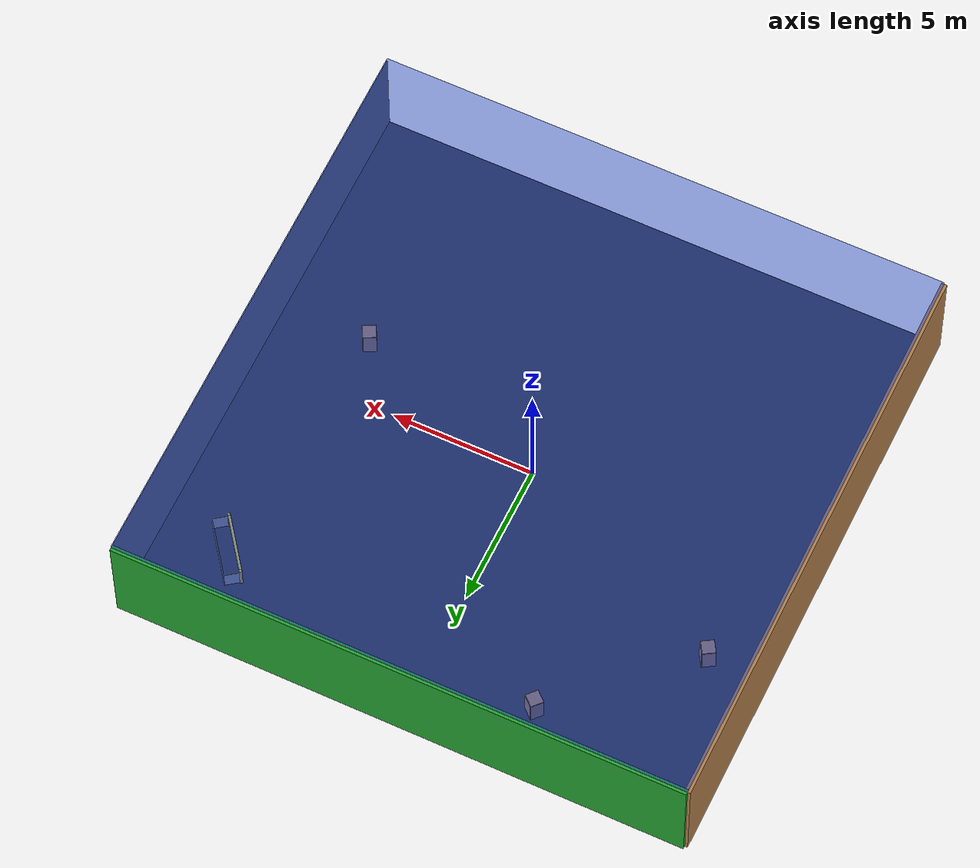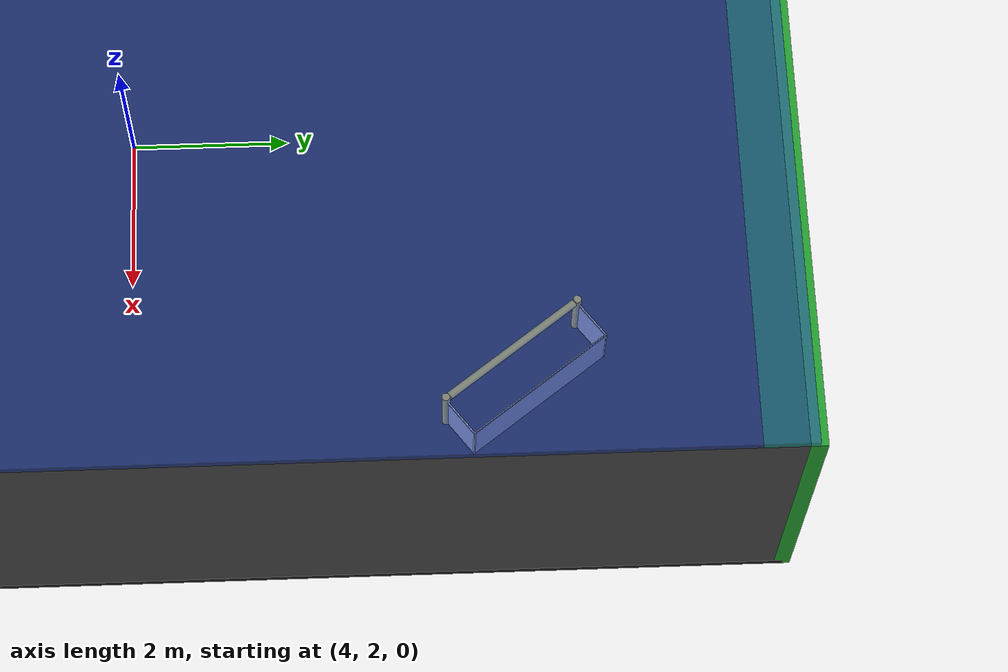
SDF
<sdf version="1.4">
 <world name="default">
  <physics type="ode">
   <max_step_size>0.001</max_step_size>
   <real_time_factor>1</real_time_factor>
   <real_time_update_rate>1000</real_time_update_rate>
   <gravity>0 0 -9.8</gravity>
  </physics>
  <scene><ambient>0.4 0.4 0.4 1</ambient><background>0.7 0.7 0.7 1</background><shadows>1</shadows></scene>
  <model name="Surrounding">
   <static>1</static>
   <link name="Ceiling">
    <collision name="Ceiling_Collision"><geometry><box><size>20 20 0.1</size></box></geometry></collision>
    <visual name="Ceiling_Visual">
     <geometry><box><size>20 20 0.1</size></box></geometry>
     <material>
      <script><uri>file://media/materials/scripts/gazebo.material</uri><name>Gazebo/BlueTransparent</name></script>
     </material>
    </visual>
    <pose>0 0 4.05 0 0 0</pose>
   </link>
   <link name="Wall_South">
    <collision name="Wall_South_Collision">
     <geometry><box><size>20 0 4</size></box></geometry>
     <pose>0 0 2 0 -0 0</pose>
    </collision>
    <visual name="Wall_South_Visual">
     <pose>0 0 2 0 -0 0</pose>
     <geometry><box><size>20 0 4</size></box></geometry>
     <material>
      <script>
       <uri>file://media/materials/scripts/gazebo.material</uri>
       <name>Gazebo/YellowTransparent</name>
      </script>
     </material>
    </visual>
    <velocity_decay><linear>0</linear><angular>0</angular></velocity_decay>
    <pose>0 -10 0 0 -0 0</pose>
   </link>
   <link name="Wall_East">
    <collision name="Wall_21_Collision">
     <geometry><box><size>20 0 4</size></box></geometry>
     <pose>0 0 2 0 -0 0</pose>
    </collision>
    <visual name="Wall_21_Visual">
     <pose>0 0 2 0 -0 0</pose>
     <geometry><box><size>20 0 4</size></box></geometry>
     <material>
      <script><uri>file://media/materials/scripts/gazebo.material</uri><name>Gazebo/Road</name></script>
     </material>
    </visual>
    <velocity_decay><linear>0</linear><angular>0</angular></velocity_decay>
    <pose>10 0 0 0 -0 1.5708</pose>
   </link>
   <link name="Wall_North">
    <collision name="Wall_22_Collision">
     <geometry><box><size>20 0.2 4</size></box></geometry>
     <pose>0 0 2 0 -0 0</pose>
    </collision>
    <visual name="Wall_22_Visual">
     <pose>0 0 2 0 -0 0</pose>
     <geometry><box><size>20 0.2 4</size></box></geometry>
     <material>
      <script><uri>file://media/materials/scripts/gazebo.material</uri><name>Gazebo/GreenGlow</name></script>
     </material>
    </visual>
    <velocity_decay><linear>0</linear><angular>0</angular></velocity_decay>
    <pose>0 10 0 0 -0 0</pose>
   </link>
   <link name="Wall_West">
    <collision name="Wall_23_Collision">
     <geometry><box><size>20 0.2 4</size></box></geometry>
     <pose>0 0 2 0 -0 0</pose>
    </collision>
    <visual name="Wall_23_Visual">
     <pose>0 0 2 0 -0 0</pose>
     <geometry><box><size>20 0.2 4</size></box></geometry>
     <material>
      <script><uri>file://media/materials/scripts/gazebo.material</uri><name>Gazebo/Wood</name></script>
     </material>
    </visual>
    <velocity_decay><linear>0</linear><angular>0</angular></velocity_decay>
    <pose>-10 0 0 0 0 -1.5708</pose>
   </link>
   <link name="Ground_link">
    <collision name="collision">
     <pose>0 0 .05 0 -0 0</pose>
     <geometry><box><size>20 20 0.1</size></box></geometry>
    </collision>
    <visual name="visual">
     <pose>0 0 .05 0 -0 0</pose>
     <geometry><box><size>20 20 0.1</size></box></geometry>
     <material>
      <script><uri>file://media/materials/scripts/gazebo.material</uri><name>Gazebo/FlatBlack</name></script>
     </material>
    </visual>
   </link>
   <static>1</static>
  </model>
  <spherical_coordinates>
   <surface_model>EARTH_WGS84</surface_model>
   <latitude_deg>0</latitude_deg>
   <longitude_deg>0</longitude_deg>
   <elevation>0</elevation>
   <heading_deg>0</heading_deg>
  </spherical_coordinates>
  <light name="lightball_0" type="diffuse">
   <diffuse>0.8 0.8 0.8 1</diffuse>
   <specular>0.2 0.2 0.2 1</specular>
   <attenuation>
    <range>100</range>
    <constant>0.7</constant>
    <linear>0.01</linear>
    <quadratic>0.001</quadratic>
   </attenuation>
   <direction>-0.5 0.1 -0.9</direction>
   <pose>4.76269465542 -0.0486921772658 2.48397542512 0 0 0</pose>
  </light>
  <light name="lightball_1" type="diffuse">
   <diffuse>0.8 0.8 0.8 1</diffuse>
   <specular>0.2 0.2 0.2 1</specular>
   <attenuation>
    <range>100</range>
    <constant>0.7</constant>
    <linear>0.01</linear>
    <quadratic>0.001</quadratic>
   </attenuation>
   <direction>-0.5 0.1 -0.9</direction>
   <pose>1.54493141286 -3.30400032156 2.76292691351 0 0 0</pose>
  </light>
  <light name="lightball_2" type="diffuse">
   <diffuse>0.8 0.8 0.8 1</diffuse>
   <specular>0.2 0.2 0.2 1</specular>
   <attenuation>
    <range>100</range>
    <constant>0.7</constant>
    <linear>0.01</linear>
    <quadratic>0.001</quadratic>
   </attenuation>
   <direction>-0.5 0.1 -0.9</direction>
   <pose>-9.0515554196 9.59332842896 3.37133575433 0 0 0</pose>
  </light>
  <light name="lightball_3" type="diffuse">
   <diffuse>0.8 0.8 0.8 1</diffuse>
   <specular>0.2 0.2 0.2 1</specular>
   <attenuation>
    <range>100</range>
    <constant>0.7</constant>
    <linear>0.01</linear>
    <quadratic>0.001</quadratic>
   </attenuation>
   <direction>-0.5 0.1 -0.9</direction>
   <pose>4.66403971579 8.48414026018 1.49905910751 0 0 0</pose>
  </light>
  <light name="lightball_4" type="diffuse">
   <diffuse>0.8 0.8 0.8 1</diffuse>
   <specular>0.2 0.2 0.2 1</specular>
   <attenuation>
    <range>100</range>
    <constant>0.7</constant>
    <linear>0.01</linear>
    <quadratic>0.001</quadratic>
   </attenuation>
   <direction>-0.5 0.1 -0.9</direction>
   <pose>-1.19103229476 3.77415165963 1.41220418156 0 0 0</pose>
  </light>
  <light name="lightball_5" type="diffuse">
   <diffuse>0.8 0.8 0.8 1</diffuse>
   <specular>0.2 0.2 0.2 1</specular>
   <attenuation>
    <range>100</range>
    <constant>0.7</constant>
    <linear>0.01</linear>
    <quadratic>0.001</quadratic>
   </attenuation>
   <direction>-0.5 0.1 -0.9</direction>
   <pose>2.47213071423 -1.69045399885 1.4323181729 0 0 0</pose>
  </light>
  <light name="lightball_6" type="diffuse">
   <diffuse>0.8 0.8 0.8 1</diffuse>
   <specular>0.2 0.2 0.2 1</specular>
   <attenuation>
    <range>100</range>
    <constant>0.7</constant>
    <linear>0.01</linear>
    <quadratic>0.001</quadratic>
   </attenuation>
   <direction>-0.5 0.1 -0.9</direction>
   <pose>-2.23619604909 -3.04078595746 3.64218408053 0 0 0</pose>
  </light>
  <light name="lightball_7" type="diffuse">
   <diffuse>0.8 0.8 0.8 1</diffuse>
   <specular>0.2 0.2 0.2 1</specular>
   <attenuation>
    <range>100</range>
    <constant>0.7</constant>
    <linear>0.01</linear>
    <quadratic>0.001</quadratic>
   </attenuation>
   <direction>-0.5 0.1 -0.9</direction>
   <pose>-2.19691167832 1.38984687723 1.31905075086 0 0 0</pose>
  </light>
  <light name="lightball_8" type="diffuse">
   <diffuse>0.8 0.8 0.8 1</diffuse>
   <specular>0.2 0.2 0.2 1</specular>
   <attenuation>
    <range>100</range>
    <constant>0.7</constant>
    <linear>0.01</linear>
    <quadratic>0.001</quadratic>
   </attenuation>
   <direction>-0.5 0.1 -0.9</direction>
   <pose>4.22839908905 -3.16383897169 3.24125496033 0 0 0</pose>
  </light>
  <include><uri>model://cabinet</uri><pose>-7.96235175991 3.77560438673 0 0 0 0.554618930847</pose></include>
  <include><uri>model://cabinet</uri><pose>-3.73046086704 7.7815776277 0 0 0 0.838546028197</pose></include>
  <include><uri>model://cabinet</uri><pose>6.83914825386 -1.99443824866 0 0 0 0.466354558682</pose></include>
  <include>
   <uri>model://robocup_3Dsim_goal</uri>
   <pose>7.3939903891 6.78573362835 0 0 0 0.640694132679</pose>
  </include>
 </world>
</sdf>

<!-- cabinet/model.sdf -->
<sdf version="1.5">
  <model name="cabinet">
    <static>true</static>
    <link name="cabinet_bottom_plate">
      <inertial>
        <pose>0 0 -1 0 0 0</pose>
        <inertia>
          <ixx>2.050000</ixx>
          <ixy>0</ixy>
          <ixz>0</ixz>
          <iyy>2.050000</iyy>
          <iyz>0</iyz>
          <izz>2.050000</izz>
        </inertia>
        <mass>25.000000</mass>
      </inertial>
      <collision name="cabinet_bottom_plate_geom">
        <pose>0 0 0.010000 0 0 0</pose>
        <geometry>
          <box>
            <size>0.450000 0.450000 0.020000</size>
          </box>
        </geometry>
      </collision>
      <visual name="cabinet_bottom_plate_geom_visual">
        <pose>0 0 0.010000 0 0 0</pose>
        <geometry>
          <box>
            <size>0.450000 0.450000 0.020000</size>
          </box>
        </geometry>
        <material>
          <script>
            <uri>model://media/materials/scripts/gazebo.material</uri>
            <name>Gazebo/Wood</name>
          </script>
        </material>
      </visual>
      <collision name="cabinet_bottom_plate_geom_cabinet_back_plate">
        <pose>0.235000 0 0.510000 0 0 0</pose>
        <geometry>
          <box>
            <size>0.020000 0.450000 1.020000</size>
          </box>
        </geometry>
      </collision>
      <visual name="cabinet_bottom_plate_geom_cabinet_back_plate_visual">
        <pose>0.235000 0 0.510000 0 0 0</pose>
        <geometry>
          <box>
            <size>0.020000 0.450000 1.020000</size>
          </box>
        </geometry>
        <material>
          <script>
            <uri>model://media/materials/scripts/gazebo.material</uri>
            <name>Gazebo/Wood</name>
          </script>
        </material>
      </visual>
      <collision name="cabinet_bottom_plate_geom_cabinet_left_plate">
        <pose>0 0.235000 0.510000 0 0 0</pose>
        <geometry>
          <box>
            <size>0.450000 0.020000 1.020000</size>
          </box>
        </geometry>
      </collision>
      <visual name="cabinet_bottom_plate_geom_cabinet_left_plate_visual">
        <pose>0 0.235000 0.510000 0 0 0</pose>
        <geometry>
          <box>
            <size>0.450000 0.020000 1.020000</size>
          </box>
        </geometry>
        <material>
          <script>
            <uri>model://media/materials/scripts/gazebo.material</uri>
            <name>Gazebo/Wood</name>
          </script>
        </material>
      </visual>
      <collision name="cabinet_bottom_plate_geom_cabinet_middle_plate">
        <pose>0 0 0.510000 0 0 0</pose>
        <geometry>
          <box>
            <size>0.450000 0.450000 0.020000</size>
          </box>
        </geometry>
      </collision>
      <visual name="cabinet_bottom_plate_geom_cabinet_middle_plate_visual">
        <pose>0 0 0.510000 0 0 0</pose>
        <geometry>
          <box>
            <size>0.450000 0.450000 0.020000</size>
          </box>
        </geometry>
        <material>
          <script>
            <uri>model://media/materials/scripts/gazebo.material</uri>
            <name>Gazebo/Wood</name>
          </script>
        </material>
      </visual>
      <collision name="cabinet_bottom_plate_geom_cabinet_right_plate">
        <pose>0 -0.235000 0.510000 0 0 0</pose>
        <geometry>
          <box>
            <size>0.450000 0.020000 1.020000</size>
          </box>
        </geometry>
      </collision>
      <visual name="cabinet_bottom_plate_geom_cabinet_right_plate_visual">
        <pose>0 -0.235000 0.510000 0 0 0</pose>
        <geometry>
          <box>
            <size>0.450000 0.020000 1.020000</size>
          </box>
        </geometry>
        <material>
          <script>
            <uri>model://media/materials/scripts/gazebo.material</uri>
            <name>Gazebo/Wood</name>
          </script>
        </material>
      </visual>
      <collision name="cabinet_bottom_plate_geom_cabinet_top_plate">
        <pose>0 0 1.010000 0 0 0</pose>
        <geometry>
          <box>
            <size>0.450000 0.450000 0.020000</size>
          </box>
        </geometry>
      </collision>
      <visual name="cabinet_bottom_plate_geom_cabinet_top_plate_visual">
        <pose>0 0 1.010000 0 0 0</pose>
        <geometry>
          <box>
            <size>0.450000 0.450000 0.020000</size>
          </box>
        </geometry>
        <material>
          <script>
            <uri>model://media/materials/scripts/gazebo.material</uri>
            <name>Gazebo/Wood</name>
          </script>
        </material>
      </visual>
    </link>
  </model>
</sdf>

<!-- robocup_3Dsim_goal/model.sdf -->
<sdf version="1.5">
  <model name="robocup_3d_goal">
    <static>true</static>
    <link name="left_post">
      <pose>0 1.05 0.45 0 0 0</pose>
      <collision name="collision">
        <geometry>
          <cylinder>
            <radius>0.05</radius>
            <length>0.9</length>
          </cylinder>
        </geometry>
      </collision>
      <visual name="visual">
        <geometry>
          <cylinder>
            <radius>0.05</radius>
            <length>0.9</length>
          </cylinder>
        </geometry>
        <material>
          <script>
            <uri>file://media/materials/scripts/gazebo.material</uri>
            <name>Gazebo/ZincYellow</name>
          </script>
        </material>
      </visual>
    </link>
    <link name="left_support_horiz_lower">
      <pose>0.30 1.05 0.01 0 0 0</pose>
      <collision name="collision">
        <geometry>
          <box>
            <size>0.50 0.02 0.02</size>
          </box>
        </geometry>
      </collision>
      <visual name="visual">
        <geometry>
          <box>
            <size>0.50 0.02 0.02</size>
          </box>
        </geometry>
        <material>
          <script>
            <uri>file://media/materials/scripts/gazebo.material</uri>
            <name>Gazebo/White</name>
          </script>
        </material>
      </visual>
    </link>
    <link name="left_support_horiz_upper">
      <pose>0.30 1.05 0.79 0 0 0</pose>
      <collision name="collision">
        <geometry>
          <box>
            <size>0.50 0.02 0.02</size>
          </box>
        </geometry>
      </collision>
      <visual name="visual">
        <geometry>
          <box>
            <size>0.50 0.02 0.02</size>
          </box>
        </geometry>
        <material>
          <script>
            <uri>file://media/materials/scripts/gazebo.material</uri>
            <name>Gazebo/White</name>
          </script>
        </material>
      </visual>
    </link>
    <link name="left_support_vertical">
      <pose>0.56 1.05 0.4 0 1.5708 0</pose>
      <collision name="collision">
        <geometry>
          <box>
            <size>0.80 0.02 0.02</size>
          </box>
        </geometry>
      </collision>
      <visual name="visual">
        <geometry>
          <box>
            <size>0.80 0.02 0.02</size>
          </box>
        </geometry>
        <material>
          <script>
            <uri>file://media/materials/scripts/gazebo.material</uri>
            <name>Gazebo/White</name>
          </script>
        </material>
      </visual>
    </link>
    <link name="right_support_horiz_lower">
      <pose>0.30 -1.05 0.01 0 0 0</pose>
      <collision name="collision">
        <geometry>
          <box>
            <size>0.50 0.02 0.02</size>
          </box>
        </geometry>
      </collision>
      <visual name="visual">
        <geometry>
          <box>
            <size>0.50 0.02 0.02</size>
          </box>
        </geometry>
        <material>
          <script>
            <uri>file://media/materials/scripts/gazebo.material</uri>
            <name>Gazebo/White</name>
          </script>
        </material>
      </visual>
    </link>
    <link name="right_support_horiz_upper">
      <pose>0.30 -1.05 0.79 0 0 0</pose>
      <collision name="collision">
        <geometry>
          <box>
            <size>0.50 0.02 0.02</size>
          </box>
        </geometry>
      </collision>
      <visual name="visual">
        <geometry>
          <box>
            <size>0.50 0.02 0.02</size>
          </box>
        </geometry>
        <material>
          <script>
            <uri>file://media/materials/scripts/gazebo.material</uri>
            <name>Gazebo/White</name>
          </script>
        </material>
      </visual>
    </link>
    <link name="right_support_vertical">
      <pose>0.56 -1.05 0.4 0 1.5708 0</pose>
      <collision name="collision">
        <geometry>
          <box>
            <size>0.80 0.02 0.02</size>
          </box>
        </geometry>
      </collision>
      <visual name="visual">
        <geometry>
          <box>
            <size>0.80 0.02 0.02</size>
          </box>
        </geometry>
        <material>
          <script>
            <uri>file://media/materials/scripts/gazebo.material</uri>
            <name>Gazebo/White</name>
          </script>
        </material>
      </visual>
    </link>
    <link name="center_support_horiz_lower">
      <pose>0.56 0 0.01 0 1.5708 0</pose>
      <collision name="collision">
        <geometry>
          <box>
            <size>0.02 2.08 0.02</size>
          </box>
        </geometry>
      </collision>
      <visual name="visual">
        <geometry>
          <box>
            <size>0.02 2.08 0.02</size>
          </box>
        </geometry>
        <material>
          <script>
            <uri>file://media/materials/scripts/gazebo.material</uri>
            <name>Gazebo/White</name>
          </script>
        </material>
      </visual>
    </link>
    <link name="center_support_horiz_upper">
      <pose>0.56 0 0.79 0 1.5708 0</pose>
      <collision name="collision">
        <geometry>
          <box>
            <size>0.02 2.08 0.02</size>
          </box>
        </geometry>
      </collision>
      <visual name="visual">
        <geometry>
          <box>
            <size>0.02 2.08 0.02</size>
          </box>
        </geometry>
        <material>
          <script>
            <uri>file://media/materials/scripts/gazebo.material</uri>
            <name>Gazebo/White</name>
          </script>
        </material>
      </visual>
    </link>
    <link name="right_post">
      <pose>0 -1.05 0.45 0 0 0</pose>
      <collision name="collision">
        <geometry>
          <cylinder>
            <radius>0.05</radius>
            <length>0.9</length>
          </cylinder>
        </geometry>
      </collision>
      <visual name="visual">
        <geometry>
          <cylinder>
            <radius>0.05</radius>
            <length>0.9</length>
          </cylinder>
        </geometry>
        <material>
          <script>
            <uri>file://media/materials/scripts/gazebo.material</uri>
            <name>Gazebo/ZincYellow</name>
          </script>
        </material>
      </visual>
    </link>
    <link name="crossbar">
      <pose>0 0 0.85 1.57 1.57 0</pose>
      <collision name="collision">
        <geometry>
          <cylinder>
            <radius>0.05</radius>
            <length>2.0</length>
          </cylinder>
        </geometry>
      </collision>
      <visual name="visual">
        <geometry>
          <cylinder>
            <radius>0.05</radius>
            <length>2.0</length>
          </cylinder>
        </geometry>
        <material>
          <script>
            <uri>file://media/materials/scripts/gazebo.material</uri>
            <name>Gazebo/ZincYellow</name>
          </script>
        </material>
      </visual>
    </link>
    <link name="center_net">
      <pose>0.56 0 0.40 0 0 0</pose>
      <collision name="collision">
        <geometry>
          <box>
            <size>0.01 2.1 0.80</size>
          </box>
        </geometry>
      </collision>
      <visual name="visual">
        <geometry>
          <box>
            <size>0.01 2.1 0.80</size>
          </box>
        </geometry>
        <material>
          <script>
            <uri>model://../model_source/models/robocup09_spl_field/materials/scripts/</uri>
            <uri>model://../model_source/models/robocup09_spl_field/materials/textures/</uri>
            <name>RoboCup/Net</name>
          </script>
        </material>
      </visual>
    </link>
    <link name="left_net">
      <pose>0.30 1.05 0.40 0 0 0</pose>
      <collision name="collision">
        <geometry>
          <box>
            <size>0.50 0.01 0.76</size>
          </box>
        </geometry>
      </collision>
      <visual name="visual">
        <geometry>
          <box>
            <size>0.50 0.01 0.76</size>
          </box>
        </geometry>
        <material>
          <script>
            <uri>model://../model_source/models/robocup09_spl_field/materials/scripts/</uri>
            <uri>model://../model_source/models/robocup09_spl_field/materials/textures/</uri>
            <name>RoboCup/Net</name>
          </script>
        </material>
      </visual>
    </link>
    <link name="right_net">
      <pose>0.30 -1.05 0.40 0 0 0</pose>
      <collision name="collision">
        <geometry>
          <box>
            <size>0.50 0.01 0.76</size>
          </box>
        </geometry>
      </collision>
      <visual name="visual">
        <geometry>
          <box>
            <size>0.50 0.01 0.76</size>
          </box>
        </geometry>
        <material>
          <script>
            <uri>model://../model_source/models/robocup09_spl_field/materials/scripts/</uri>
            <uri>model://../model_source/models/robocup09_spl_field/materials/textures/</uri>
            <name>RoboCup/Net</name>
          </script>
        </material>
      </visual>
    </link>
  </model>
</sdf>
